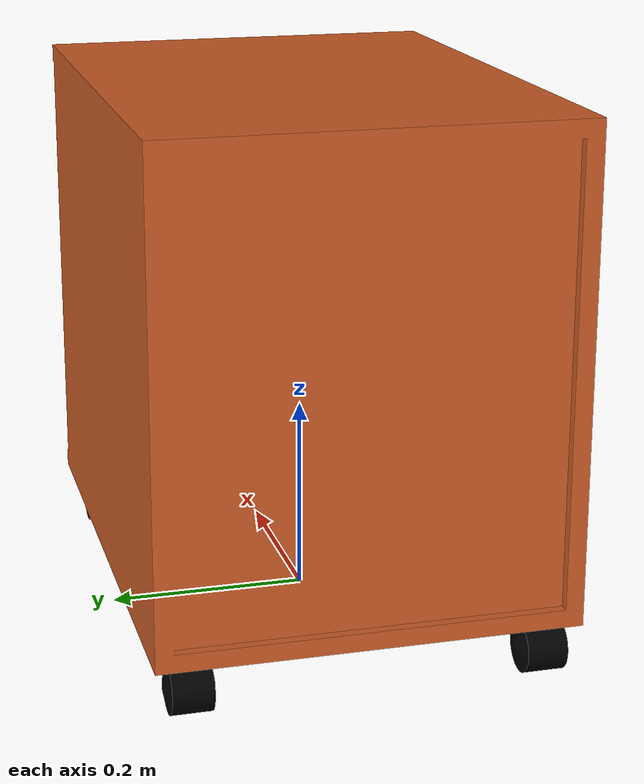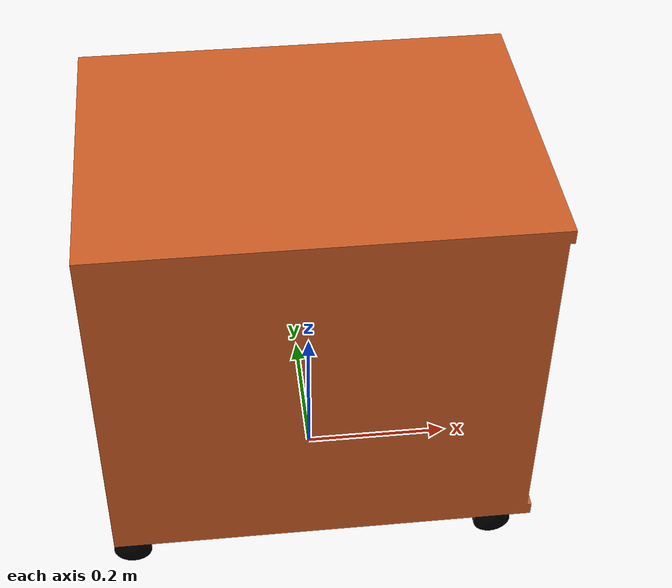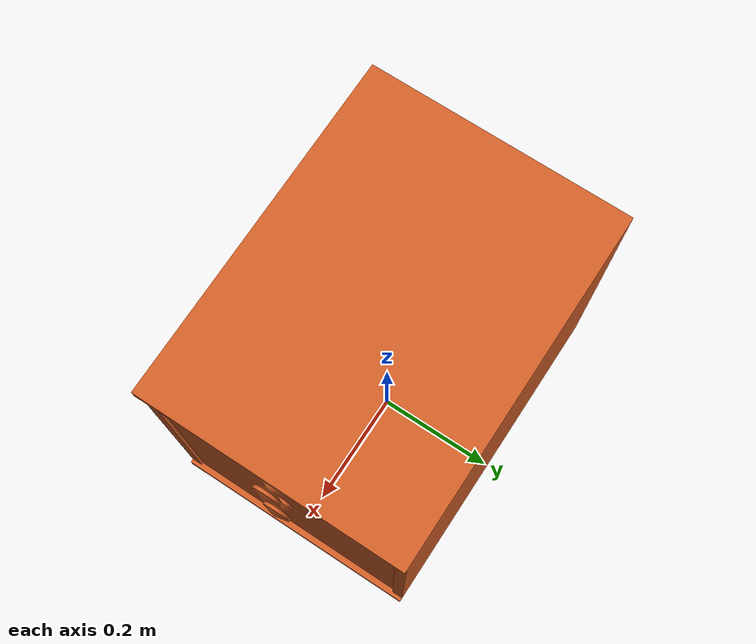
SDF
<?xml version="1.0" ?>
<sdf version="1.5">
  <model name="driving_cabinet_2d">
    <static>true</static>
    <link name="driving_cabinet_2d">
      <collision name="driving_cabinet_2d">
        <pose>0 0 0 0 0 0</pose>
        <geometry>
          <mesh>
            <uri>model://driving_cabinet_2d/meshes/model.dae</uri>
          </mesh>
        </geometry>
      </collision>

      <visual name="driving_cabinet_2d">
      <cast_shadows>true</cast_shadows>
        <geometry>
          <mesh>
          <uri>model://driving_cabinet_2d/meshes/model.dae</uri>
        </mesh>
        </geometry>
      </visual>
    </link>
  </model>
</sdf>
